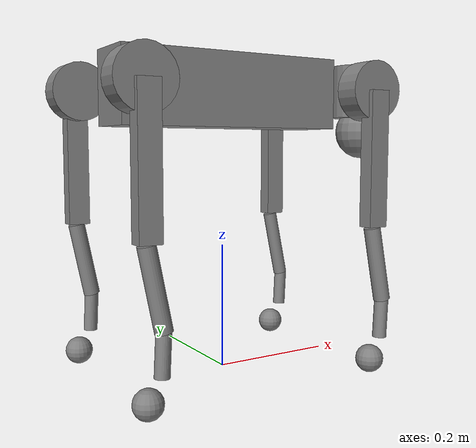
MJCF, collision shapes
<mujoco model="go2_mpc">
  <compiler angle="radian" meshdir="." autolimits="true"/>

  <option timestep="0.002" gravity="0 0 -9.81" integrator="implicitfast"
          cone="elliptic" impratio="100"/>

  <default>
    <default class="go2">
      <!-- MPC: 低 damping 让力矩控制生效 (RL 模式用 PD 覆盖此值) -->
      <geom friction="0.6" margin="0.001" condim="1"/>
      <joint axis="0 1 0" damping="0.1" armature="0.01" frictionloss="0.2"/>
      <motor ctrlrange="-23.7 23.7"/>
      <default class="abduction">
        <joint axis="1 0 0" range="-1.0472 1.0472"/>
      </default>
      <default class="hip">
        <default class="front_hip">
          <joint range="-1.5708 3.4907"/>
        </default>
        <default class="back_hip">
          <joint range="-0.5236 4.5379"/>
        </default>
      </default>
      <default class="knee">
        <joint range="-2.7227 -0.83776"/>
        <motor ctrlrange="-45.43 45.43"/>
      </default>
      <default class="visual">
        <geom type="mesh" contype="0" conaffinity="0" group="2"/>
      </default>
      <default class="collision">
        <geom group="3"/>
        <default class="foot">
          <geom size="0.022" pos="-0.002 0 -0.213" priority="1"
                solimp="0.015 1 0.022" condim="6"
                friction="0.8 0.02 0.01"/>
        </default>
      </default>
    </default>
  </default>

  <asset>
    <material name="metal" rgba=".9 .95 .95 1"/>
    <material name="black" rgba="0 0 0 1"/>
    <material name="white" rgba="1 1 1 1"/>
    <material name="gray" rgba="0.671705 0.692426 0.774270 1"/>

    <mesh file="base_0.obj"/>
    <mesh file="base_1.obj"/>
    <mesh file="base_2.obj"/>
    <mesh file="base_3.obj"/>
    <mesh file="base_4.obj"/>
    <mesh file="hip_0.obj"/>
    <mesh file="hip_1.obj"/>
    <mesh file="thigh_0.obj"/>
    <mesh file="thigh_1.obj"/>
    <mesh file="thigh_mirror_0.obj"/>
    <mesh file="thigh_mirror_1.obj"/>
    <mesh file="calf_0.obj"/>
    <mesh file="calf_1.obj"/>
    <mesh file="calf_mirror_0.obj"/>
    <mesh file="calf_mirror_1.obj"/>
    <mesh file="foot.obj"/>
  </asset>

  <worldbody>
    <!-- MPC 默认 base 高度 0.445 (keyframe 会覆盖到 0.27) -->
    <body name="base_link" pos="0 0 0.445" childclass="go2">
      <inertial pos="0.021112 0 -0.005366" quat="-0.000543471 0.713435 -0.00173769 0.700719"
        mass="6.921" diaginertia="0.107027 0.0980771 0.0244531"/>
      <freejoint name="root"/>

      <geom mesh="base_0" material="black" class="visual"/>
      <geom mesh="base_1" material="black" class="visual"/>
      <geom mesh="base_2" material="black" class="visual"/>
      <geom mesh="base_3" material="white" class="visual"/>
      <geom mesh="base_4" material="gray" class="visual"/>
      <geom name="base_collision" size="0.1881 0.04675 0.057" type="box" class="collision"/>
      <geom name="head_upper_collision" size="0.05 0.045" pos="0.285 0 0.01" type="cylinder" class="collision"/>
      <geom name="head_lower_collision" size="0.047" pos="0.293 0 -0.06" class="collision"/>

      <site name="base_link_site" pos="0 0 0" size="0.01"/>
      <site name="imu" pos="-0.02557 0 0.04232" size="0.01"/>

      <!-- Front-Left leg -->
      <body name="FL_hip" pos="0.1934 0.0465 0">
        <inertial pos="-0.0054 0.00194 -0.000105" quat="0.497014 0.499245 0.505462 0.498237"
          mass="0.678" diaginertia="0.00088403 0.000596003 0.000479967"/>
        <joint name="FL_hip_joint" class="abduction"/>
        <geom mesh="hip_0" material="metal" class="visual"/>
        <geom mesh="hip_1" material="gray" class="visual"/>
        <geom name="FL_hip_collision" size="0.046 0.02" pos="0 0.08 0" quat="1 1 0 0"
              type="cylinder" class="collision"/>
        <body name="FL_thigh" pos="0 0.0955 0">
          <inertial pos="-0.00374 -0.0223 -0.0327" quat="0.829533 0.0847635 -0.0200632 0.551623"
            mass="1.152" diaginertia="0.00594973 0.00584149 0.000878787"/>
          <joint name="FL_thigh_joint" class="front_hip"/>
          <geom mesh="thigh_0" material="metal" class="visual"/>
          <geom mesh="thigh_1" material="gray" class="visual"/>
          <geom name="FL_thigh_collision" size="0.1065 0.01225 0.017" pos="0 0 -0.1065"
                quat="0.707107 0 0.707107 0" type="box" class="collision"/>
          <body name="FL_calf" pos="0 0 -0.213">
            <inertial pos="0.00629595 -0.000622121 -0.141417"
              quat="0.710672 0.00154099 -0.00450087 0.703508"
              mass="0.241352" diaginertia="0.0014901 0.00146356 5.31397e-05"/>
            <joint name="FL_calf_joint" class="knee"/>
            <geom mesh="calf_0" material="gray" class="visual"/>
            <geom mesh="calf_1" material="black" class="visual"/>
            <geom name="FL_calf_upper_collision" size="0.012 0.06" pos="0.008 0 -0.06"
                  quat="0.994493 0 -0.104807 0" type="cylinder" class="collision"/>
            <geom name="FL_calf_lower_collision" size="0.011 0.0325" pos="0.02 0 -0.148"
                  quat="0.999688 0 0.0249974 0" type="cylinder" class="collision"/>
            <geom pos="0 0 -0.213" mesh="foot" class="visual" material="black"/>
            <geom name="FL" class="foot"/>
            <site name="FL_foot_site" pos="-0.002 0 -0.213" size="0.01"/>
            <!-- MPC 足端 body: Pinocchio 需要此 frame 读取足端位置/速度 -->
            <body name="FL_foot" pos="0 0 -0.213"/>
          </body>
        </body>
      </body>

      <!-- Front-Right leg -->
      <body name="FR_hip" pos="0.1934 -0.0465 0">
        <inertial pos="-0.0054 -0.00194 -0.000105" quat="0.498237 0.505462 0.499245 0.497014"
          mass="0.678" diaginertia="0.00088403 0.000596003 0.000479967"/>
        <joint name="FR_hip_joint" class="abduction"/>
        <geom mesh="hip_0" material="metal" class="visual" quat="4.63268e-05 1 0 0"/>
        <geom mesh="hip_1" material="gray" class="visual" quat="4.63268e-05 1 0 0"/>
        <geom name="FR_hip_collision" size="0.046 0.02" pos="0 -0.08 0"
              quat="0.707107 0.707107 0 0" type="cylinder" class="collision"/>
        <body name="FR_thigh" pos="0 -0.0955 0">
          <inertial pos="-0.00374 0.0223 -0.0327" quat="0.551623 -0.0200632 0.0847635 0.829533"
            mass="1.152" diaginertia="0.00594973 0.00584149 0.000878787"/>
          <joint name="FR_thigh_joint" class="front_hip"/>
          <geom mesh="thigh_mirror_0" material="metal" class="visual"/>
          <geom mesh="thigh_mirror_1" material="gray" class="visual"/>
          <geom name="FR_thigh_collision" size="0.1065 0.01225 0.017" pos="0 0 -0.1065"
                quat="0.707107 0 0.707107 0" type="box" class="collision"/>
          <body name="FR_calf" pos="0 0 -0.213">
            <inertial pos="0.00629595 0.000622121 -0.141417"
              quat="0.703508 -0.00450087 0.00154099 0.710672"
              mass="0.241352" diaginertia="0.0014901 0.00146356 5.31397e-05"/>
            <joint name="FR_calf_joint" class="knee"/>
            <geom mesh="calf_mirror_0" material="gray" class="visual"/>
            <geom mesh="calf_mirror_1" material="black" class="visual"/>
            <geom name="FR_calf_upper_collision" size="0.013 0.06" pos="0.01 0 -0.06"
                  quat="0.995004 0 -0.0998334 0" type="cylinder" class="collision"/>
            <geom name="FR_calf_lower_collision" size="0.011 0.0325" pos="0.02 0 -0.148"
                  quat="0.999688 0 0.0249974 0" type="cylinder" class="collision"/>
            <geom pos="0 0 -0.213" mesh="foot" class="visual" material="black"/>
            <geom name="FR" class="foot"/>
            <site name="FR_foot_site" pos="-0.002 0 -0.213" size="0.01"/>
            <body name="FR_foot" pos="0 0 -0.213"/>
          </body>
        </body>
      </body>

      <!-- Rear-Left leg -->
      <body name="RL_hip" pos="-0.1934 0.0465 0">
        <inertial pos="0.0054 0.00194 -0.000105" quat="0.505462 0.498237 0.497014 0.499245"
          mass="0.678" diaginertia="0.00088403 0.000596003 0.000479967"/>
        <joint name="RL_hip_joint" class="abduction"/>
        <geom mesh="hip_0" material="metal" class="visual" quat="4.63268e-05 0 1 0"/>
        <geom mesh="hip_1" material="gray" class="visual" quat="4.63268e-05 0 1 0"/>
        <geom name="RL_hip_collision" size="0.046 0.02" pos="0 0.08 0"
              quat="0.707107 0.707107 0 0" type="cylinder" class="collision"/>
        <body name="RL_thigh" pos="0 0.0955 0">
          <inertial pos="-0.00374 -0.0223 -0.0327" quat="0.829533 0.0847635 -0.0200632 0.551623"
            mass="1.152" diaginertia="0.00594973 0.00584149 0.000878787"/>
          <joint name="RL_thigh_joint" class="back_hip"/>
          <geom mesh="thigh_0" material="metal" class="visual"/>
          <geom mesh="thigh_1" material="gray" class="visual"/>
          <geom name="RL_thigh_collision" size="0.1065 0.01225 0.017" pos="0 0 -0.1065"
                quat="0.707107 0 0.707107 0" type="box" class="collision"/>
          <body name="RL_calf" pos="0 0 -0.213">
            <inertial pos="0.00629595 -0.000622121 -0.141417"
              quat="0.710672 0.00154099 -0.00450087 0.703508"
              mass="0.241352" diaginertia="0.0014901 0.00146356 5.31397e-05"/>
            <joint name="RL_calf_joint" class="knee"/>
            <geom mesh="calf_0" material="gray" class="visual"/>
            <geom mesh="calf_1" material="black" class="visual"/>
            <geom name="RL_calf_upper_collision" size="0.013 0.06" pos="0.01 0 -0.06"
                  quat="0.995004 0 -0.0998334 0" type="cylinder" class="collision"/>
            <geom name="RL_calf_lower_collision" size="0.011 0.0325" pos="0.02 0 -0.148"
                  quat="0.999688 0 0.0249974 0" type="cylinder" class="collision"/>
            <geom pos="0 0 -0.213" mesh="foot" class="visual" material="black"/>
            <geom name="RL" class="foot"/>
            <site name="RL_foot_site" pos="-0.002 0 -0.213" size="0.01"/>
            <body name="RL_foot" pos="0 0 -0.213"/>
          </body>
        </body>
      </body>

      <!-- Rear-Right leg -->
      <body name="RR_hip" pos="-0.1934 -0.0465 0">
        <inertial pos="0.0054 -0.00194 -0.000105" quat="0.499245 0.497014 0.498237 0.505462"
          mass="0.678" diaginertia="0.00088403 0.000596003 0.000479967"/>
        <joint name="RR_hip_joint" class="abduction"/>
        <geom mesh="hip_0" material="metal" class="visual"
              quat="2.14617e-09 4.63268e-05 4.63268e-05 -1"/>
        <geom mesh="hip_1" material="gray" class="visual"
              quat="2.14617e-09 4.63268e-05 4.63268e-05 -1"/>
        <geom name="RR_hip_collision" size="0.046 0.02" pos="0 -0.08 0"
              quat="0.707107 0.707107 0 0" type="cylinder" class="collision"/>
        <body name="RR_thigh" pos="0 -0.0955 0">
          <inertial pos="-0.00374 0.0223 -0.0327" quat="0.551623 -0.0200632 0.0847635 0.829533"
            mass="1.152" diaginertia="0.00594973 0.00584149 0.000878787"/>
          <joint name="RR_thigh_joint" class="back_hip"/>
          <geom mesh="thigh_mirror_0" material="metal" class="visual"/>
          <geom mesh="thigh_mirror_1" material="gray" class="visual"/>
          <geom name="RR_thigh_collision" size="0.1065 0.01225 0.017" pos="0 0 -0.1065"
                quat="0.707107 0 0.707107 0" type="box" class="collision"/>
          <body name="RR_calf" pos="0 0 -0.213">
            <inertial pos="0.00629595 0.000622121 -0.141417"
              quat="0.703508 -0.00450087 0.00154099 0.710672"
              mass="0.241352" diaginertia="0.0014901 0.00146356 5.31397e-05"/>
            <joint name="RR_calf_joint" class="knee"/>
            <geom mesh="calf_mirror_0" material="gray" class="visual"/>
            <geom mesh="calf_mirror_1" material="black" class="visual"/>
            <geom name="RR_calf_upper_collision" size="0.013 0.06" pos="0.01 0 -0.06"
                  quat="0.995004 0 -0.0998334 0" type="cylinder" class="collision"/>
            <geom name="RR_calf_lower_collision" size="0.011 0.0325" pos="0.02 0 -0.148"
                  quat="0.999688 0 0.0249974 0" type="cylinder" class="collision"/>
            <geom pos="0 0 -0.213" mesh="foot" class="visual" material="black"/>
            <geom name="RR" class="foot"/>
            <site name="RR_foot_site" pos="-0.002 0 -0.213" size="0.01"/>
            <body name="RR_foot" pos="0 0 -0.213"/>
          </body>
        </body>
      </body>
    </body>
  </worldbody>

  <actuator>
    <motor class="abduction" name="FL_hip" joint="FL_hip_joint"/>
    <motor class="hip" name="FL_thigh" joint="FL_thigh_joint"/>
    <motor class="knee" name="FL_calf" joint="FL_calf_joint"/>
    <motor class="abduction" name="FR_hip" joint="FR_hip_joint"/>
    <motor class="hip" name="FR_thigh" joint="FR_thigh_joint"/>
    <motor class="knee" name="FR_calf" joint="FR_calf_joint"/>
    <motor class="abduction" name="RL_hip" joint="RL_hip_joint"/>
    <motor class="hip" name="RL_thigh" joint="RL_thigh_joint"/>
    <motor class="knee" name="RL_calf" joint="RL_calf_joint"/>
    <motor class="abduction" name="RR_hip" joint="RR_hip_joint"/>
    <motor class="hip" name="RR_thigh" joint="RR_thigh_joint"/>
    <motor class="knee" name="RR_calf" joint="RR_calf_joint"/>
  </actuator>

  <sensor>
    <accelerometer name="imu_accel" site="imu"/>
    <gyro name="imu_gyro" site="imu"/>
    <touch name="FL_foot_contact" site="FL_foot_site"/>
    <touch name="FR_foot_contact" site="FR_foot_site"/>
    <touch name="RL_foot_contact" site="RL_foot_site"/>
    <touch name="RR_foot_contact" site="RR_foot_site"/>
    <framepos name="base_pos" objtype="site" objname="base_link_site"/>
    <framequat name="base_quat" objtype="site" objname="base_link_site"/>
    <framelinvel name="base_linvel" objtype="site" objname="base_link_site"/>
    <frameangvel name="base_angvel" objtype="site" objname="base_link_site"/>
  </sensor>

  <keyframe>
    <key name="home"
         qpos="0 0 0.27 1 0 0 0 0 0.9 -1.8 0 0.9 -1.8 0 0.9 -1.8 0 0.9 -1.8"/>
  </keyframe>
</mujoco>
